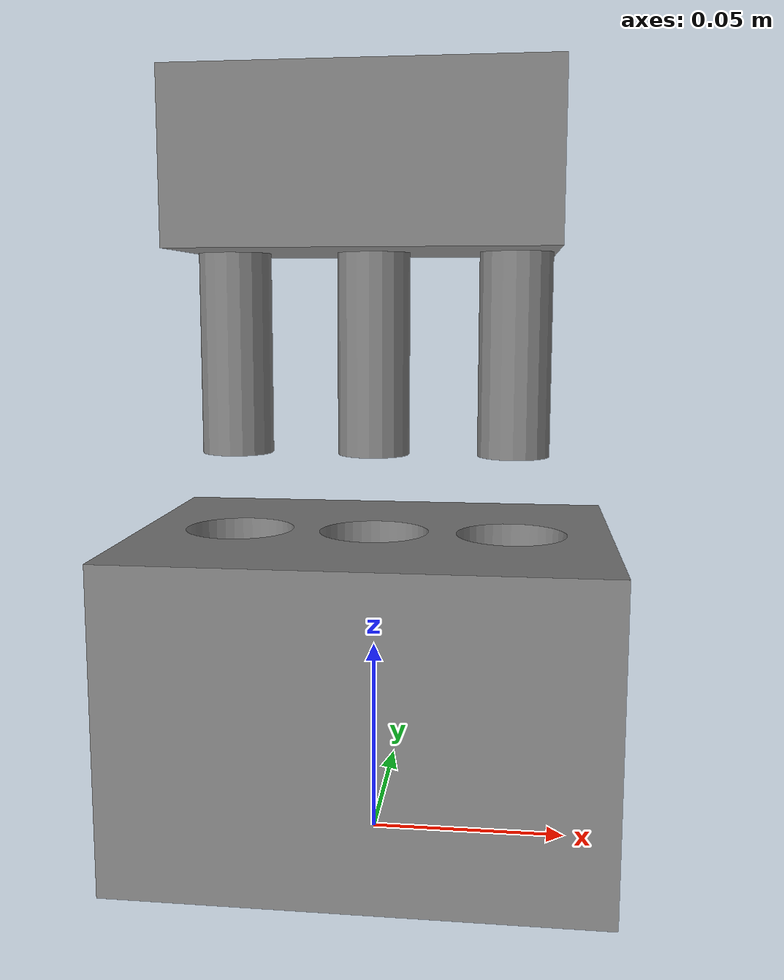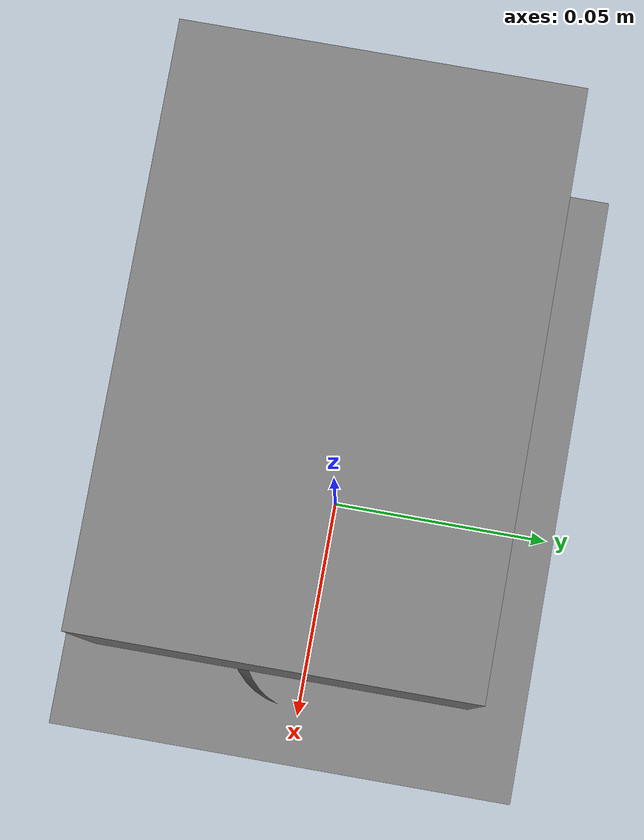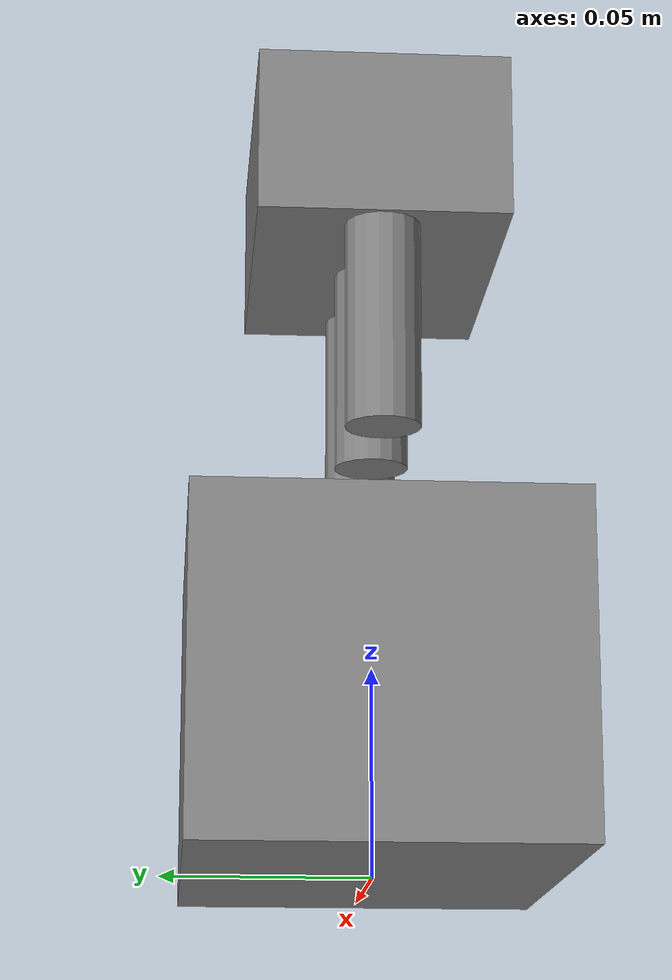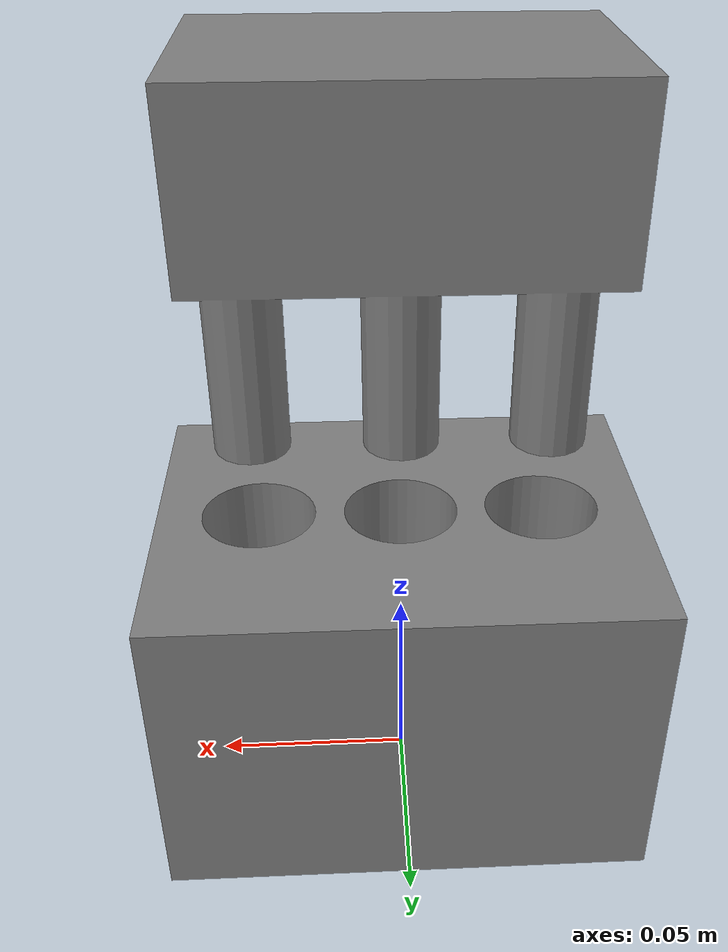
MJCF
<mujoco model="circle36_three">
  <default>
    <default class="visual">
      <geom group="2" type="mesh" contype="0" conaffinity="0"/>
    </default>
    <default class="collision">
      <geom group="3" type="mesh"/>
    </default>
  </default>
  <asset>
    <mesh file="circle36_three.obj"/>
    <mesh file="circle36_three_collision_0.obj"/>
    <mesh file="circle36_three_collision_1.obj"/>
    <mesh file="circle36_three_collision_2.obj"/>
    <mesh file="circle36_three_collision_3.obj"/>
    <mesh file="circle36_three_collision_4.obj"/>
    <mesh file="circle36_three_collision_5.obj"/>
    <mesh file="circle36_three_collision_6.obj"/>
    <mesh file="circle36_three_collision_7.obj"/>
    <mesh file="circle36_three_collision_8.obj"/>
    <mesh file="circle36_three_collision_9.obj"/>
    <mesh file="circle36_three_collision_10.obj"/>
    <mesh file="circle36_three_collision_11.obj"/>
    <mesh file="circle36_three_collision_12.obj"/>
    <mesh file="circle36_three_collision_13.obj"/>
    <mesh file="circle36_three_collision_14.obj"/>
    <mesh file="circle36_three_collision_15.obj"/>
    <mesh file="circle36_three_collision_16.obj"/>
    <mesh file="circle36_three_collision_17.obj"/>
    <mesh file="circle36_three_collision_18.obj"/>
    <mesh file="circle36_three_collision_19.obj"/>
    <mesh file="circle36_three_collision_20.obj"/>
    <mesh file="circle36_three_collision_21.obj"/>
    <mesh file="circle36_three_collision_22.obj"/>
    <mesh file="circle36_three_collision_23.obj"/>
    <mesh file="circle36_three_collision_24.obj"/>
    <mesh file="circle36_three_collision_25.obj"/>
    <mesh file="circle36_three_collision_26.obj"/>
    <mesh file="circle36_three_collision_27.obj"/>
    <mesh file="circle36_three_collision_28.obj"/>
    <mesh file="circle36_three_collision_29.obj"/>
    <mesh file="circle36_three_collision_30.obj"/>
    <mesh file="circle36_three_collision_31.obj"/>
    <mesh file="peg_circle36_three.obj"/>
    <mesh file="peg_circle36_three_collision_0.obj"/>
    <mesh file="peg_circle36_three_collision_1.obj"/>
    <mesh file="peg_circle36_three_collision_2.obj"/>
    <mesh file="peg_circle36_three_collision_3.obj"/>
    <mesh file="peg_circle36_three_collision_4.obj"/>
    <mesh file="peg_circle36_three_collision_5.obj"/>
    <mesh file="peg_circle36_three_collision_6.obj"/>
    <mesh file="peg_circle36_three_collision_7.obj"/>
    <mesh file="peg_circle36_three_collision_8.obj"/>
    <mesh file="peg_circle36_three_collision_9.obj"/>
    <mesh file="peg_circle36_three_collision_10.obj"/>
    <mesh file="peg_circle36_three_collision_11.obj"/>
    <mesh file="peg_circle36_three_collision_12.obj"/>
    <mesh file="peg_circle36_three_collision_13.obj"/>
    <mesh file="peg_circle36_three_collision_14.obj"/>
    <mesh file="peg_circle36_three_collision_15.obj"/>
    <mesh file="peg_circle36_three_collision_16.obj"/>
    <mesh file="peg_circle36_three_collision_17.obj"/>
    <mesh file="peg_circle36_three_collision_18.obj"/>
    <mesh file="peg_circle36_three_collision_19.obj"/>
    <mesh file="peg_circle36_three_collision_20.obj"/>
    <mesh file="peg_circle36_three_collision_21.obj"/>
    <mesh file="peg_circle36_three_collision_22.obj"/>
    <mesh file="peg_circle36_three_collision_23.obj"/>
    <mesh file="peg_circle36_three_collision_24.obj"/>
    <mesh file="peg_circle36_three_collision_25.obj"/>
    <mesh file="peg_circle36_three_collision_27.obj"/>
    <mesh file="peg_circle36_three_collision_28.obj"/>
    <mesh file="peg_circle36_three_collision_29.obj"/>
    <mesh file="peg_circle36_three_collision_30.obj"/>
    <mesh file="peg_circle36_three_collision_31.obj"/>
  </asset>
  <worldbody>
    <body name="circle36_three" quat="0.707107 0.707107 0 0">
      <geom mesh="circle36_three" class="visual"/>
      <geom mesh="circle36_three_collision_0" class="collision"/>
      <geom mesh="circle36_three_collision_1" class="collision"/>
      <geom mesh="circle36_three_collision_2" class="collision"/>
      <geom mesh="circle36_three_collision_3" class="collision"/>
      <geom mesh="circle36_three_collision_4" class="collision"/>
      <geom mesh="circle36_three_collision_5" class="collision"/>
      <geom mesh="circle36_three_collision_6" class="collision"/>
      <geom mesh="circle36_three_collision_7" class="collision"/>
      <geom mesh="circle36_three_collision_8" class="collision"/>
      <geom mesh="circle36_three_collision_9" class="collision"/>
      <geom mesh="circle36_three_collision_10" class="collision"/>
      <geom mesh="circle36_three_collision_11" class="collision"/>
      <geom mesh="circle36_three_collision_12" class="collision"/>
      <geom mesh="circle36_three_collision_13" class="collision"/>
      <geom mesh="circle36_three_collision_14" class="collision"/>
      <geom mesh="circle36_three_collision_15" class="collision"/>
      <geom mesh="circle36_three_collision_16" class="collision"/>
      <geom mesh="circle36_three_collision_17" class="collision"/>
      <geom mesh="circle36_three_collision_18" class="collision"/>
      <geom mesh="circle36_three_collision_19" class="collision"/>
      <geom mesh="circle36_three_collision_20" class="collision"/>
      <geom mesh="circle36_three_collision_21" class="collision"/>
      <geom mesh="circle36_three_collision_22" class="collision"/>
      <geom mesh="circle36_three_collision_23" class="collision"/>
      <geom mesh="circle36_three_collision_24" class="collision"/>
      <geom mesh="circle36_three_collision_25" class="collision"/>
      <geom mesh="circle36_three_collision_26" class="collision"/>
      <geom mesh="circle36_three_collision_27" class="collision"/>
      <geom mesh="circle36_three_collision_28" class="collision"/>
      <geom mesh="circle36_three_collision_29" class="collision"/>
      <geom mesh="circle36_three_collision_30" class="collision"/>
      <geom mesh="circle36_three_collision_31" class="collision"/>
    </body>

    <body name="peg_circle36_three" quat="0.707107 0.707107 0 0" pos='0 0 0.1'>
      <freejoint/>
      <geom mesh="peg_circle36_three" class="visual"/>
      <geom mesh="peg_circle36_three_collision_0" class="collision"/>
      <geom mesh="peg_circle36_three_collision_1" class="collision"/>
      <geom mesh="peg_circle36_three_collision_2" class="collision"/>
      <geom mesh="peg_circle36_three_collision_3" class="collision"/>
      <geom mesh="peg_circle36_three_collision_4" class="collision"/>
      <geom mesh="peg_circle36_three_collision_5" class="collision"/>
      <geom mesh="peg_circle36_three_collision_6" class="collision"/>
      <geom mesh="peg_circle36_three_collision_7" class="collision"/>
      <geom mesh="peg_circle36_three_collision_8" class="collision"/>
      <geom mesh="peg_circle36_three_collision_9" class="collision"/>
      <geom mesh="peg_circle36_three_collision_10" class="collision"/>
      <geom mesh="peg_circle36_three_collision_11" class="collision"/>
      <geom mesh="peg_circle36_three_collision_12" class="collision"/>
      <geom mesh="peg_circle36_three_collision_13" class="collision"/>
      <geom mesh="peg_circle36_three_collision_14" class="collision"/>
      <geom mesh="peg_circle36_three_collision_15" class="collision"/>
      <geom mesh="peg_circle36_three_collision_16" class="collision"/>
      <geom mesh="peg_circle36_three_collision_17" class="collision"/>
      <geom mesh="peg_circle36_three_collision_18" class="collision"/>
      <geom mesh="peg_circle36_three_collision_19" class="collision"/>
      <geom mesh="peg_circle36_three_collision_20" class="collision"/>
      <geom mesh="peg_circle36_three_collision_21" class="collision"/>
      <geom mesh="peg_circle36_three_collision_22" class="collision"/>
      <geom mesh="peg_circle36_three_collision_23" class="collision"/>
      <geom mesh="peg_circle36_three_collision_24" class="collision"/>
      <geom mesh="peg_circle36_three_collision_25" class="collision"/>
      <geom mesh="peg_circle36_three_collision_27" class="collision"/>
      <geom mesh="peg_circle36_three_collision_28" class="collision"/>
      <geom mesh="peg_circle36_three_collision_29" class="collision"/>
      <geom mesh="peg_circle36_three_collision_30" class="collision"/>
      <geom mesh="peg_circle36_three_collision_31" class="collision"/>
    </body>
  </worldbody>
</mujoco>
